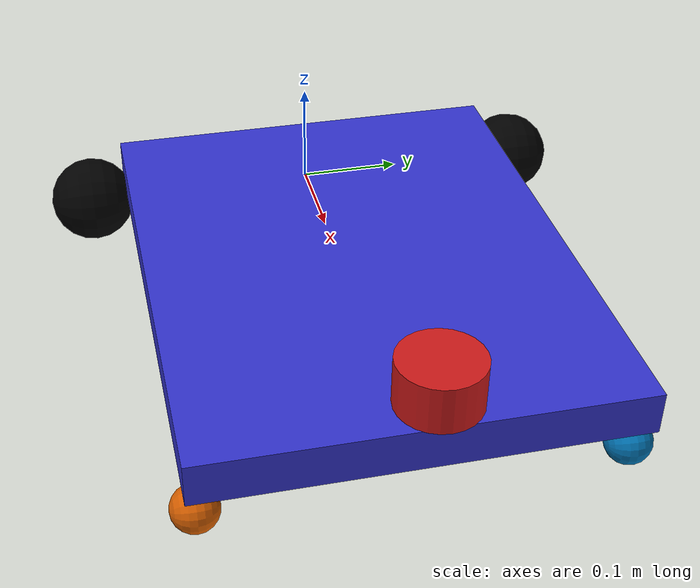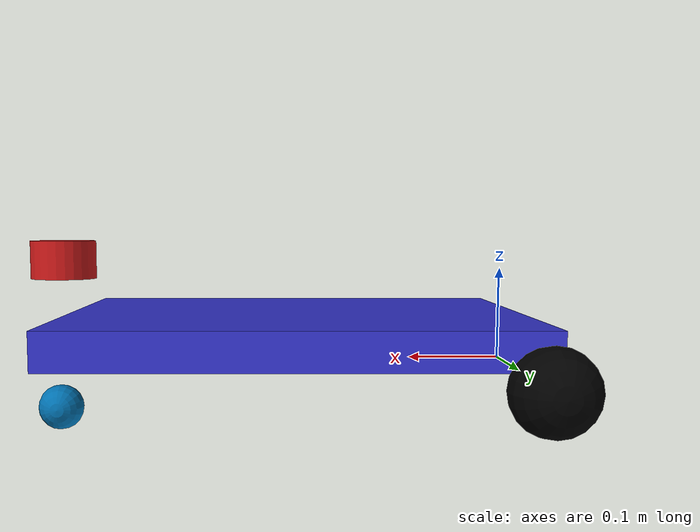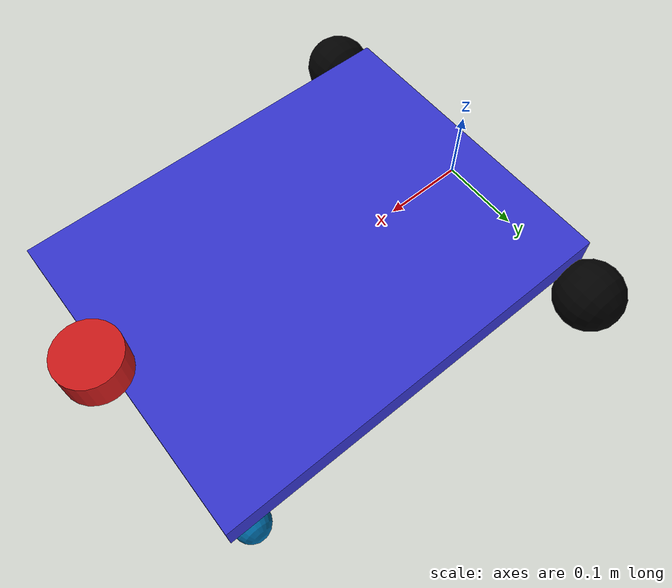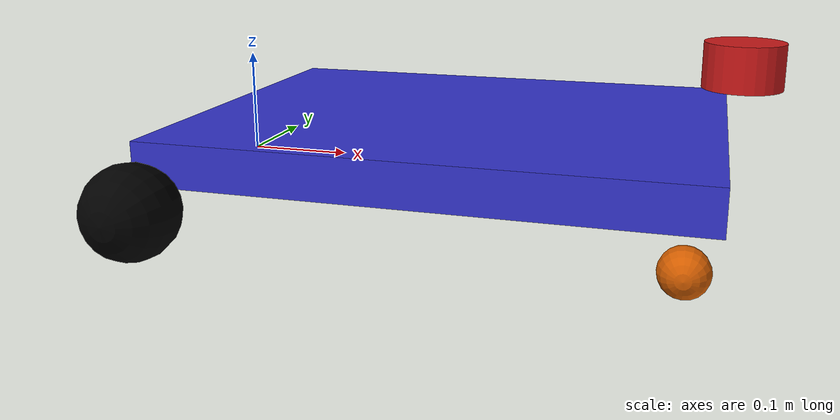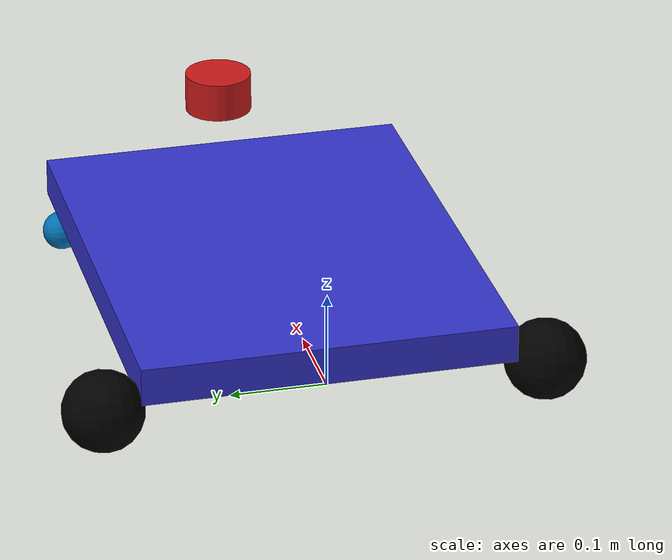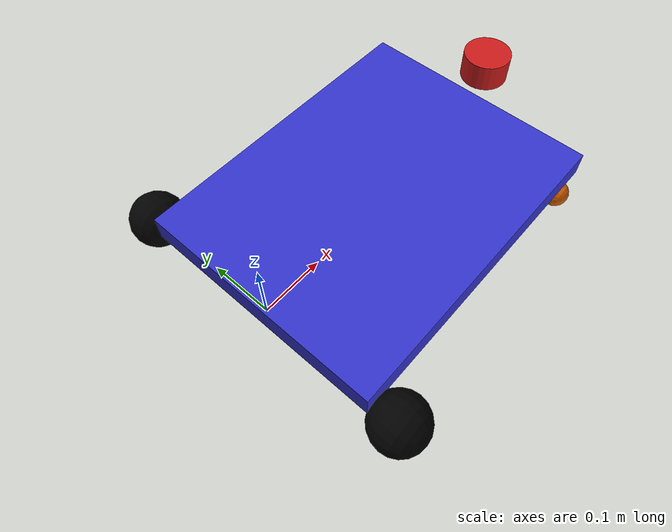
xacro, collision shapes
<?xml version="1.0"?>
<robot xmlns:xacro="http://www.ros.org/wiki/xacro"  name="diff_bot">

    <!-- Inertial Macros -->
    <xacro:include filename="inertial_macros.xacro"/>

    <!-- Materials -->
    <xacro:include filename="materials.xacro"/>

    <!-- Gazebo plugins -->
    <xacro:include filename="gazebo.xacro"/>

    <!-- Mesh/STL files Path -->
    <!-- change the path as per your project structure -->
    <xacro:property name="mesh_path"
    value="file:///home/subham/ros_ws/diff_drive/src/diff_bot_description/meshes"/>

    <!-- Chassis -->
    <xacro:include filename="base.xacro"/>

    <!-- Rear Wheels -->
    <xacro:include filename="wheels.xacro"/>

    <!-- Caster Wheels -->
    <xacro:include filename="caster.xacro"/>

    <!-- LIDAR -->
    <xacro:include filename="lidar.xacro"/>

    <!-- ROS2 Control -->
    <xacro:include filename="ros2_control.xacro"/>

</robot>

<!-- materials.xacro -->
<robot xmlns:xacro="http://www.ros.org/wiki/xacro">

    <material name="white">
        <color rgba="1 1 1 1"/>
    </material>

    <material name="black">
        <color rgba="0 0 0 1"/>
    </material>

    <material name="grey">
        <color rgba="0.4 0.4 0.4 1"/>
    </material>

    <material name="red">
        <color rgba="0.8 0.1 0.1 1"/>
    </material>

    <material name="green">
        <color rgba="0 0.4 0 1"/>
    </material>

    <material name="blue">
        <color rgba="0.2 0.2 0.8 1.0"/>
    </material>

</robot>

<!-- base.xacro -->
<robot xmlns:xacro="http://www.ros.org/wiki/xacro">
  <!-- Variables -->
  <xacro:property name="base_length" value="0.498"/>
  <xacro:property name="base_width" value="0.39"/>
  <xacro:property name="base_height" value="0.04"/>

  <xacro:include filename="inertial_macros.xacro"/>

  <!-- Base Link -->
  <link name="base_link"/>

  <!-- Chassis -->
  <joint name="base_joint" type="fixed">
    <origin xyz="0.0 0.0 0.0"/>
    <parent link="base_link"/>
    <child link="chassis"/>
  </joint>

  <link name="chassis">

    <visual>
      <origin xyz="-0.019 0.0 0.0115"/>
      <geometry>
        <mesh filename="${mesh_path}/chassis.stl"/>
      </geometry>
      <material name="blue"></material>
    </visual>

    <collision>
      <origin xyz="0.229 0.0 0.0315"/>
      <geometry>
        <box size="${base_length} ${base_width} ${base_height}"/>
      </geometry>
    </collision>

    <xacro:inertial_box mass="1.0" x="${base_length}" y="${base_width}" z="${base_height}">
      <origin xyz="0.0 0.0 0.0"/>
    </xacro:inertial_box>

  </link>

</robot>

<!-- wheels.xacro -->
<robot xmlns:xacro="http://www.ros.org/wiki/xacro">

  <!-- Variables -->
  <xacro:property name="wheel_radius" value="0.0425" />
  <xacro:property name="wheel_width" value="0.04" />
  <xacro:property name="wheel_gap" value="0.009" />

  <!-- Wheel Macro -->
  <xacro:macro name="wheel" params="prefix parent x y z rotation">
    <joint name="${prefix}_wheel_joint" type="continuous">
      <parent link="${parent}"></parent>
      <child link="${prefix}_wheel"></child>
      <origin xyz="${x} ${y} ${z}" rpy="${rotation * pi/2} 0 0" />
      <axis xyz="0 0 ${rotation * -1}" />
    </joint>

    <link name="${prefix}_wheel">
      <visual>
        <origin xyz="0 0 0" rpy="${pi/2} 0 0"/>
        <geometry>
          <mesh filename="${mesh_path}/wheel.stl"/>
        </geometry>
        <material name="black"/>
      </visual>
      <collision>
        <origin xyz="0 0 -0.02"/>
        <geometry>
           <sphere radius="${wheel_radius}"/>
        </geometry>
      </collision>
      <xacro:inertial_cylinder mass="0.1" radius="${wheel_radius}" length="${wheel_width}">
        <origin xyz="0 0 0"/>
      </xacro:inertial_cylinder>
    </link>
  </xacro:macro>

  <!-- Wheels -->
  <xacro:wheel prefix="bottom_left" parent="chassis" x="0.0" y="0.21" z="0.0" rotation="1"/>
  <xacro:wheel prefix="bottom_right" parent="chassis" x="0.0" y="-0.21" z="0.0" rotation="-1"/>

</robot>

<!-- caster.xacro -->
<robot xmlns:xacro="http://www.ros.org/wiki/xacro">

    <!-- Variables -->
    <xacro:property name="caster_radius" value="0.021" />
    <xacro:property name="caster_gap" value="0.021" />

    <!-- Caster Macro (sphere) -->
    <xacro:macro name="caster" params="prefix parent x y z z_sign">
        <joint name="${prefix}_joint" type="fixed">
            <parent link="${parent}"></parent>
            <child link="${prefix}_caster"></child>
            <origin xyz="${x} ${y} ${z}" rpy="${pi/2 * z_sign} 0 0" />
            <axis xyz="0 0 ${-1 * z_sign}" />
        </joint>

        <link name="${prefix}_caster">
            <collision>
                <geometry>
                    <sphere radius="${caster_radius}"/>
                </geometry>
            </collision>
            <xacro:inertial_sphere mass="0.1" radius="${caster_radius}">
                <origin xyz="0 0 0"/>
            </xacro:inertial_sphere>
        </link>
    </xacro:macro>

    <!-- Casters (two at the bottom) -->
    <xacro:caster prefix="top_left" parent="chassis" x="0.45" y="0.185" z="${-caster_gap}" z_sign="-1"/>
    <xacro:caster prefix="top_right" parent="chassis" x="0.45" y="-0.185" z="${-caster_gap}" z_sign="1"/>
</robot>

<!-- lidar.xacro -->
<robot xmlns:xacro="http://www.ros.org/wiki/xacro">
  <!-- Variables -->
  <xacro:property name="lidar_height" value="0.042" />
  <xacro:property name="lidar_radius" value="0.036" />

  <!-- Links -->
  <joint name="lidar_joint" type="fixed">
    <origin xyz="0.4875 0.0 0.06"/>
    <parent link="chassis"/>
    <child link="lidar_link"/>
  </joint>

  <link name="lidar_link">

    <visual>
      <origin xyz="0 0 -0.08"/>
      <geometry>
        <mesh filename="${mesh_path}/lidar.stl"/>
      </geometry>
      <material name="red"/>
    </visual>

    <collision>
      <origin xyz="0 0 0.05"/>
      <geometry>
        <cylinder length="${lidar_height}" radius="${lidar_radius}"/>
      </geometry>
    </collision>

    <xacro:inertial_cylinder mass="0.1" radius="${lidar_radius}" length="${lidar_height}">
      <origin xyz="0 0 ${lidar_height/2}"/>
    </xacro:inertial_cylinder>

  </link>

</robot>
